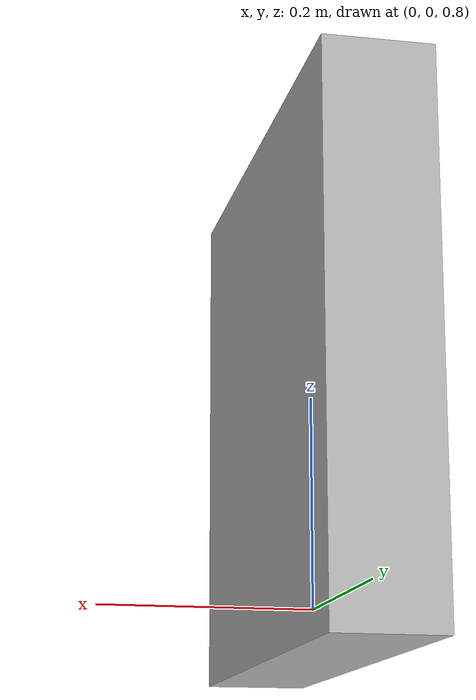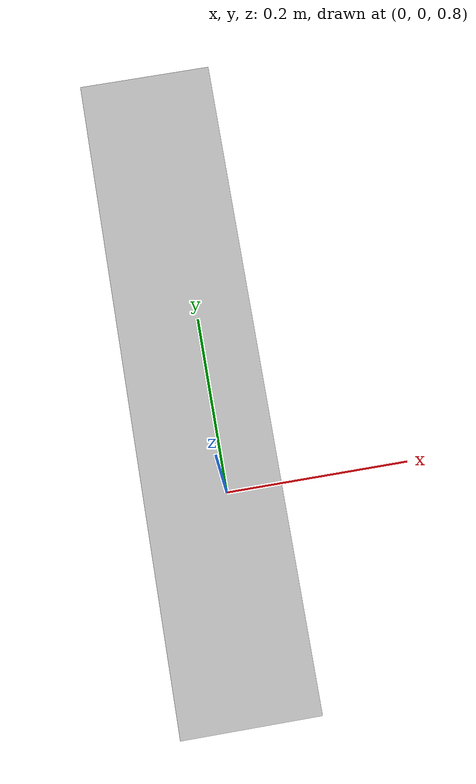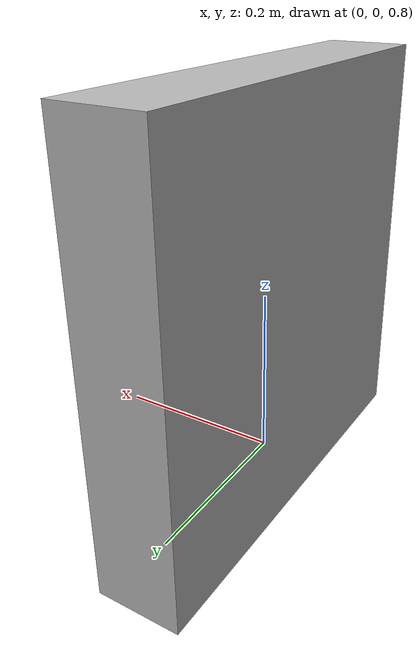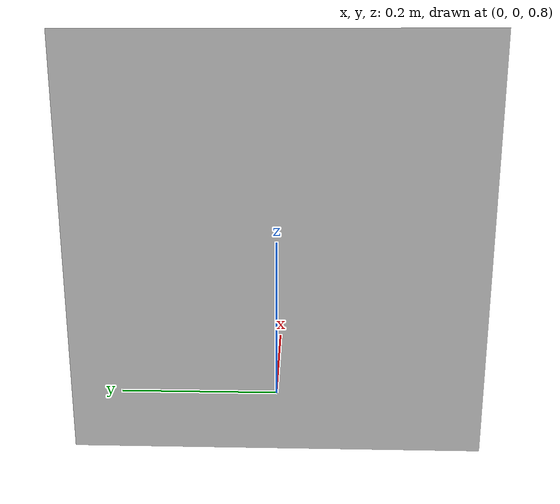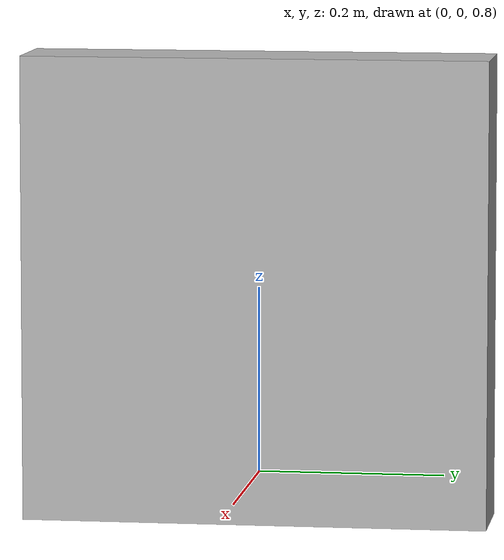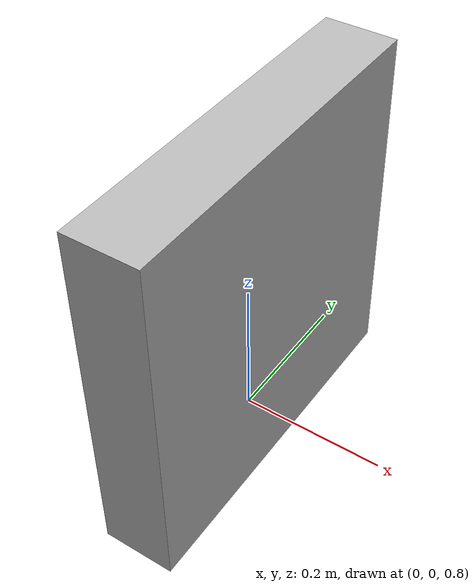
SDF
<?xml version="1.0"?>
<sdf version="1.6">
<model name="uc_cr_qr_wall_L2">
  <static>true</static>
  <pose>0 0 1 0 0 0</pose>
    <link name="link">
      <collision name="collision">
        <geometry>
          <box>
            <size>0.10 0.50 0.50</size>
          </box>
        </geometry>
        <surface>
          <friction>
            <ode>
              <mu>100</mu>
              <mu2>50</mu2>
            </ode>
          </friction>
        </surface>
      </collision>
      <visual name="visual">
        <geometry>
          <box>
            <size>0.10 0.50 0.50</size>
          </box>
        </geometry>
        <material>
          <script>
            <uri>model://uc_cr_qr_wall_L2/materials/scripts</uri>
            <uri>model://uc_cr_qr_wall_L2/materials/textures</uri>
            <name>uc_cr_qr_wall_L2/Image</name>
          </script>
        </material>
      </visual>
    </link>
  </model>
</sdf>
